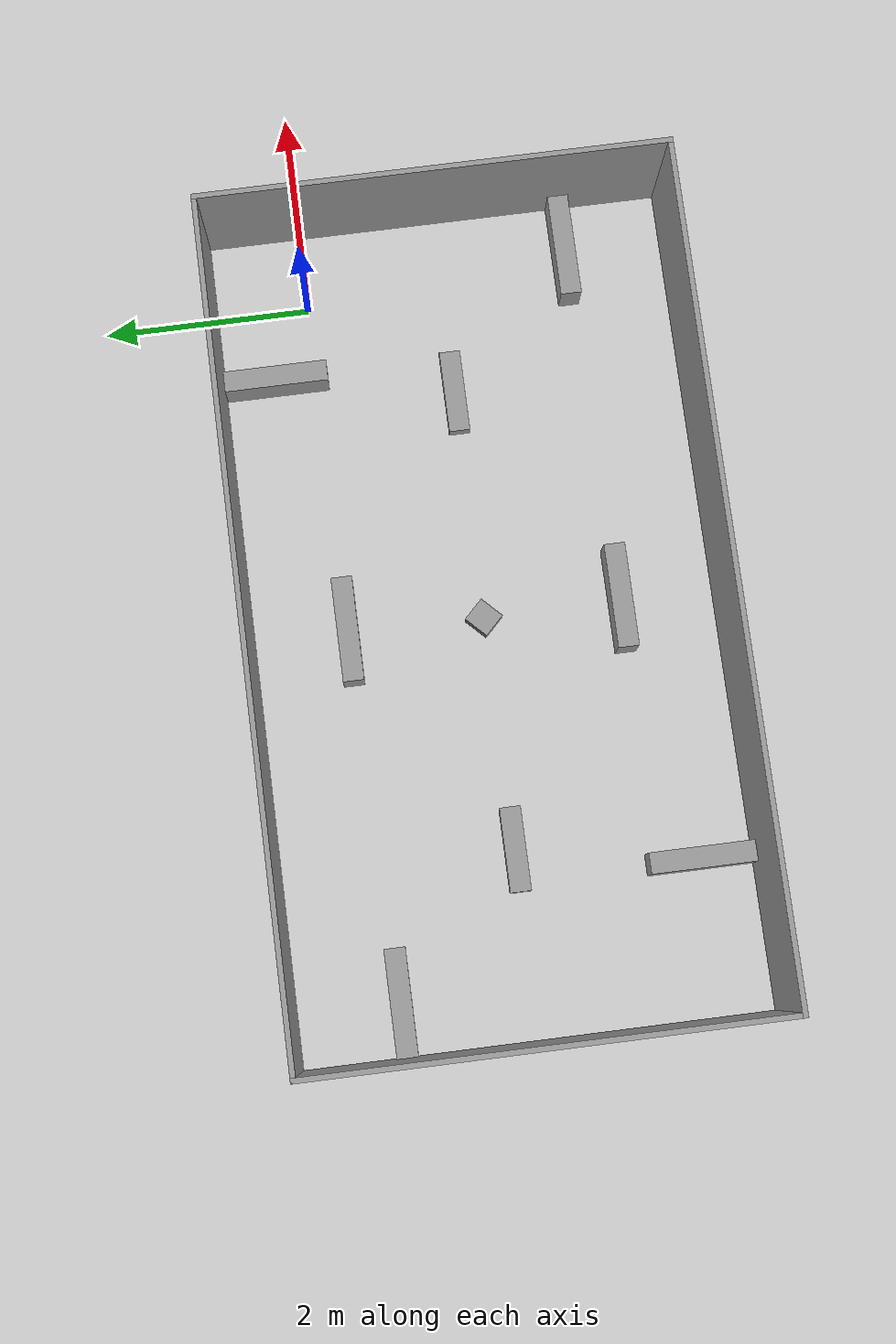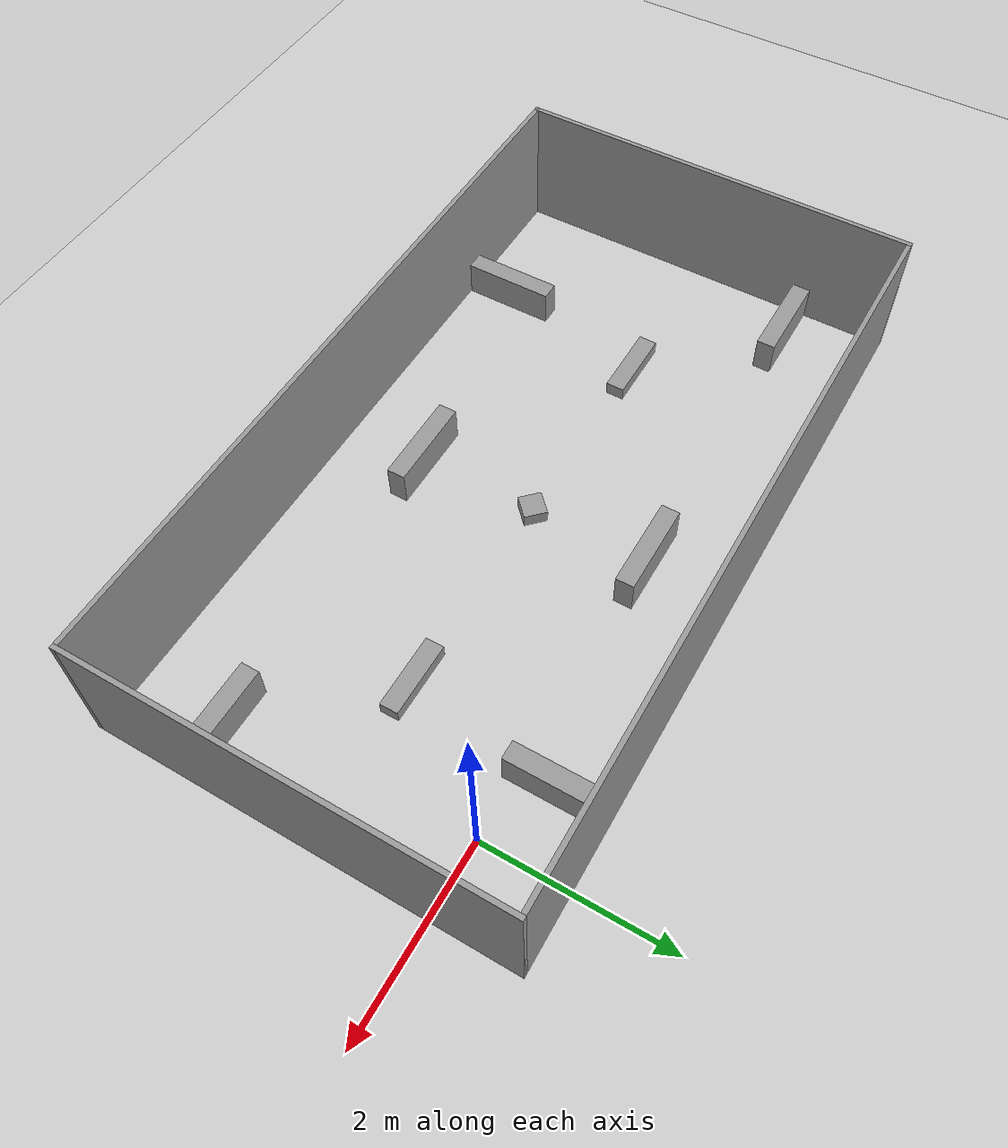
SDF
<sdf version="1.6">
 <world name="default">
  <light name="sun" type="directional">
   <pose>0 0 10 0 -0 0</pose>
   <diffuse>0.8 0.8 0.8 1</diffuse>
   <specular>0.2 0.2 0.2 1</specular>
   <attenuation>
    <range>1000</range>
    <constant>0.9</constant>
    <linear>0.01</linear>
    <quadratic>0.001</quadratic>
   </attenuation>
   <direction>-0.5 0.1 -0.9</direction>
  </light>
  <model name="ground_plane">
   <static>1</static>
   <link name="link">
    <collision name="collision">
     <geometry><plane><normal>0 0 1</normal><size>100 100</size></plane></geometry>
     <surface>
      <contact><collide_bitmask>65535</collide_bitmask></contact>
      <friction><ode><mu>100</mu><mu2>50</mu2></ode></friction>
     </surface>
    </collision>
    <visual name="visual">
     <cast_shadows>0</cast_shadows>
     <geometry><plane><normal>0 0 1</normal><size>100 100</size></plane></geometry>
     <material>
      <script><uri>file://media/materials/scripts/gazebo.material</uri><name>Gazebo/Grey</name></script>
     </material>
    </visual>
   </link>
  </model>
  <gravity>0 0 -9.8</gravity>
  <magnetic_field>6e-06 2.3e-05 -4.2e-05</magnetic_field>
  <atmosphere type="adiabatic"/>
  <physics name="default_physics" default="0" type="ode">
   <max_step_size>0.001</max_step_size>
   <real_time_factor>1</real_time_factor>
   <real_time_update_rate>1000</real_time_update_rate>
  </physics>
  <scene><ambient>0.4 0.4 0.4 1</ambient><background>0.7 0.7 0.7 1</background><shadows>1</shadows></scene>
  <spherical_coordinates>
   <surface_model>EARTH_WGS84</surface_model>
   <latitude_deg>0</latitude_deg>
   <longitude_deg>0</longitude_deg>
   <elevation>0</elevation>
   <heading_deg>0</heading_deg>
  </spherical_coordinates>
  <model name="Robomaster">
   <pose>-3.25912 -1.3231 0 0 -0 0</pose>
   <link name="Wall_0">
    <collision name="Wall_0_Collision">
     <geometry><box><size>8.13 0.05 1.5</size></box></geometry>
     <pose>0 0 0.75 0 -0 0</pose>
    </collision>
    <visual name="Wall_0_Visual">
     <pose>0 0 0.75 0 -0 0</pose>
     <geometry><box><size>8.13 0.05 1.5</size></box></geometry>
     <material>
      <script><uri>file://media/materials/scripts/gazebo.material</uri><name>Gazebo/Grey</name></script>
      <ambient>1 1 1 1</ambient>
     </material>
     <meta><layer>0</layer></meta>
    </visual>
    <pose>-0 2.24 0 0 -0 0</pose>
   </link>
   <link name="Wall_10">
    <collision name="Wall_10_Collision">
     <geometry><box><size>1 0.2 0.4</size></box></geometry>
     <pose>0 0 0.2 0 -0 0</pose>
    </collision>
    <visual name="Wall_10_Visual">
     <pose>0 0 0.2 0 -0 0</pose>
     <geometry><box><size>1 0.2 0.4</size></box></geometry>
     <material>
      <script><uri>file://media/materials/scripts/gazebo.material</uri><name>Gazebo/Grey</name></script>
      <ambient>1 1 1 1</ambient>
     </material>
     <meta><layer>0</layer></meta>
    </visual>
    <pose>-2.54 -1.71 0 0 -0 1.5708</pose>
   </link>
   <link name="Wall_12">
    <collision name="Wall_12_Collision">
     <geometry><box><size>1 0.2 0.4</size></box></geometry>
     <pose>0 0 0.2 0 -0 0</pose>
    </collision>
    <visual name="Wall_12_Visual">
     <pose>0 0 0.2 0 -0 0</pose>
     <geometry><box><size>1 0.2 0.4</size></box></geometry>
     <material>
      <script><uri>file://media/materials/scripts/gazebo.material</uri><name>Gazebo/Grey</name></script>
      <ambient>1 1 1 1</ambient>
     </material>
     <meta><layer>0</layer></meta>
    </visual>
    <pose>-3.51 1.24 0 0 -0 0</pose>
   </link>
   <link name="Wall_14">
    <collision name="Wall_14_Collision">
     <geometry><box><size>1 0.2 0.4</size></box></geometry>
     <pose>0 0 0.2 0 -0 0</pose>
    </collision>
    <visual name="Wall_14_Visual">
     <pose>0 0 0.2 0 -0 0</pose>
     <geometry><box><size>1 0.2 0.4</size></box></geometry>
     <material>
      <script><uri>file://media/materials/scripts/gazebo.material</uri><name>Gazebo/Grey</name></script>
      <ambient>1 1 1 1</ambient>
     </material>
     <meta><layer>0</layer></meta>
    </visual>
    <pose>3.51 -1.24 0 0 -0 3.14159</pose>
   </link>
   <link name="Wall_16">
    <collision name="Wall_16_Collision">
     <geometry><box><size>1 0.2 0.4</size></box></geometry>
     <pose>0 0 0.2 0 -0 0</pose>
    </collision>
    <visual name="Wall_16_Visual">
     <pose>0 0 0.2 0 -0 0</pose>
     <geometry><box><size>1 0.2 0.4</size></box></geometry>
     <material>
      <script><uri>file://media/materials/scripts/gazebo.material</uri><name>Gazebo/Grey</name></script>
      <ambient>1 1 1 1</ambient>
     </material>
     <meta><layer>0</layer></meta>
    </visual>
    <pose>-0 1.315 0 0 -0 3.14159</pose>
   </link>
   <link name="Wall_18">
    <collision name="Wall_18_Collision">
     <geometry><box><size>1 0.2 0.4</size></box></geometry>
     <pose>0 0 0.2 0 -0 0</pose>
    </collision>
    <visual name="Wall_18_Visual">
     <pose>0 0 0.2 0 -0 0</pose>
     <geometry><box><size>1 0.2 0.4</size></box></geometry>
     <material>
      <script><uri>file://media/materials/scripts/gazebo.material</uri><name>Gazebo/Grey</name></script>
      <ambient>1 1 1 1</ambient>
     </material>
     <meta><layer>0</layer></meta>
    </visual>
    <pose>-0 -1.305 0 0 -0 3.14159</pose>
   </link>
   <link name="Wall_2">
    <collision name="Wall_2_Collision">
     <geometry><box><size>4.53 0.05 1.5</size></box></geometry>
     <pose>0 0 0.75 0 -0 0</pose>
    </collision>
    <visual name="Wall_2_Visual">
     <pose>0 0 0.75 0 -0 0</pose>
     <geometry><box><size>4.53 0.05 1.5</size></box></geometry>
     <material>
      <script><uri>file://media/materials/scripts/gazebo.material</uri><name>Gazebo/Grey</name></script>
      <ambient>1 1 1 1</ambient>
     </material>
     <meta><layer>0</layer></meta>
    </visual>
    <pose>-4.04 0 0 0 -0 -1.5708</pose>
   </link>
   <link name="Wall_20">
    <collision name="Wall_20_Collision">
     <geometry><box><size>0.8 0.2 0.15</size></box></geometry>
     <pose>0 0 0.075 0 -0 0</pose>
    </collision>
    <visual name="Wall_20_Visual">
     <pose>0 0 0.075 0 -0 0</pose>
     <geometry><box><size>0.8 0.2 0.15</size></box></geometry>
     <material>
      <script><uri>file://media/materials/scripts/gazebo.material</uri><name>Gazebo/Grey</name></script>
      <ambient>1 1 1 1</ambient>
     </material>
     <meta><layer>0</layer></meta>
    </visual>
    <pose>-2.24 0 0 0 -0 0</pose>
   </link>
   <link name="Wall_22">
    <collision name="Wall_22_Collision">
     <geometry><box><size>0.8 0.2 0.15</size></box></geometry>
     <pose>0 0 0.075 0 -0 0</pose>
    </collision>
    <visual name="Wall_22_Visual">
     <pose>0 0 0.075 0 -0 0</pose>
     <geometry><box><size>0.8 0.2 0.15</size></box></geometry>
     <material>
      <script><uri>file://media/materials/scripts/gazebo.material</uri><name>Gazebo/Grey</name></script>
      <ambient>1 1 1 1</ambient>
     </material>
     <meta><layer>0</layer></meta>
    </visual>
    <pose>2.24 0 0 0 -0 3.14159</pose>
   </link>
   <link name="Wall_38">
    <collision name="Wall_38_Collision">
     <geometry><box><size>0.259899 0.25 0.15</size></box></geometry>
     <pose>0 0 0.075 0 -0 0</pose>
    </collision>
    <visual name="Wall_38_Visual">
     <pose>0 0 0.075 0 -0 0</pose>
     <geometry><box><size>0.259899 0.25 0.15</size></box></geometry>
     <material>
      <script><uri>file://media/materials/scripts/gazebo.material</uri><name>Gazebo/Grey</name></script>
      <ambient>1 1 1 1</ambient>
     </material>
     <meta><layer>0</layer></meta>
    </visual>
    <pose>-0.014465 0.006536 0 0 -0 0.785398</pose>
   </link>
   <link name="Wall_4">
    <collision name="Wall_4_Collision">
     <geometry><box><size>8.13 0.05 1.5</size></box></geometry>
     <pose>0 0 0.75 0 -0 0</pose>
    </collision>
    <visual name="Wall_4_Visual">
     <pose>0 0 0.75 0 -0 0</pose>
     <geometry><box><size>8.13 0.05 1.5</size></box></geometry>
     <material>
      <script><uri>file://media/materials/scripts/gazebo.material</uri><name>Gazebo/Grey</name></script>
      <ambient>1 1 1 1</ambient>
     </material>
     <meta><layer>0</layer></meta>
    </visual>
    <pose>-0 -2.24 0 0 -0 0</pose>
   </link>
   <link name="Wall_6">
    <collision name="Wall_6_Collision">
     <geometry><box><size>4.53 0.05 1.5</size></box></geometry>
     <pose>0 0 0.75 0 -0 0</pose>
    </collision>
    <visual name="Wall_6_Visual">
     <pose>0 0 0.75 0 -0 0</pose>
     <geometry><box><size>4.53 0.05 1.5</size></box></geometry>
     <material>
      <script><uri>file://media/materials/scripts/gazebo.material</uri><name>Gazebo/Grey</name></script>
      <ambient>1 1 1 1</ambient>
     </material>
     <meta><layer>0</layer></meta>
    </visual>
    <pose>4.04 0 0 0 -0 -1.5708</pose>
   </link>
   <link name="Wall_8">
    <collision name="Wall_8_Collision">
     <geometry><box><size>1 0.2 0.4</size></box></geometry>
     <pose>0 0 0.2 0 -0 0</pose>
    </collision>
    <visual name="Wall_8_Visual">
     <pose>0 0 0.2 0 -0 0</pose>
     <geometry><box><size>1 0.2 0.4</size></box></geometry>
     <material>
      <script><uri>file://media/materials/scripts/gazebo.material</uri><name>Gazebo/Grey</name></script>
      <ambient>1 1 1 1</ambient>
     </material>
     <meta><layer>0</layer></meta>
    </visual>
    <pose>2.54 1.71 0 0 -0 -1.5708</pose>
   </link>
   <static>1</static>
  </model>
 </world>
</sdf>
